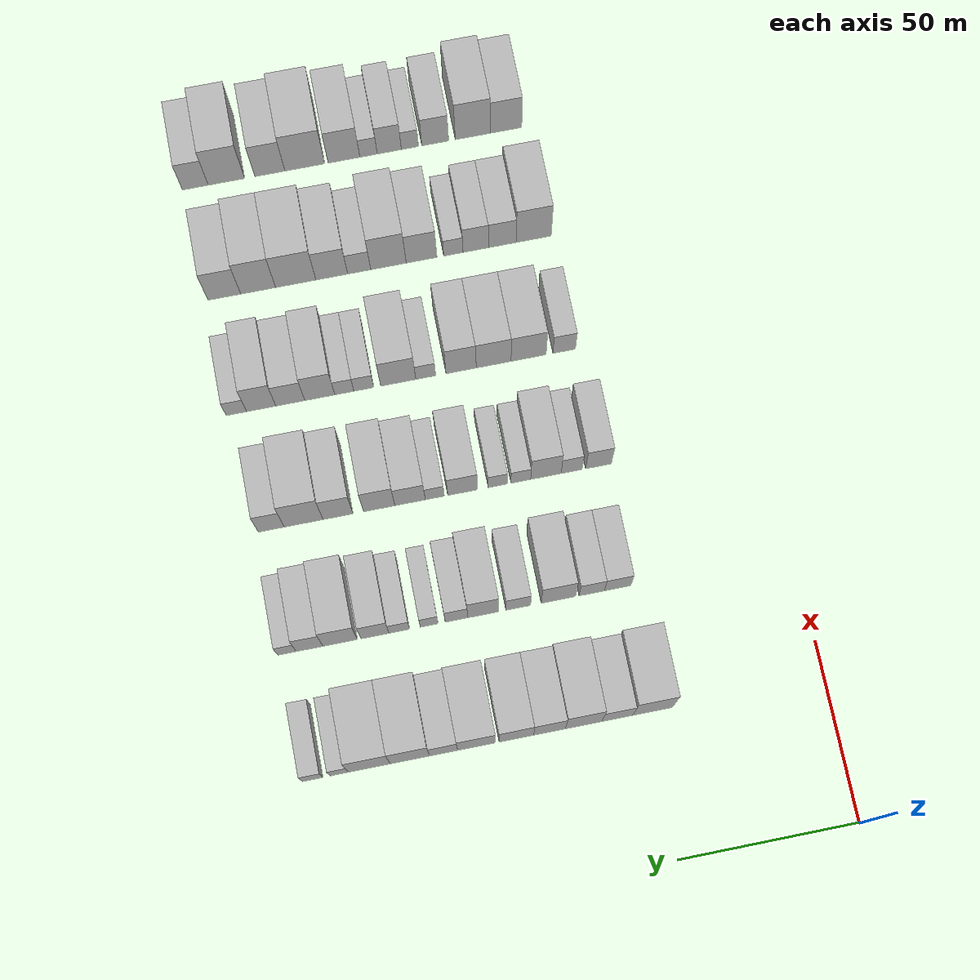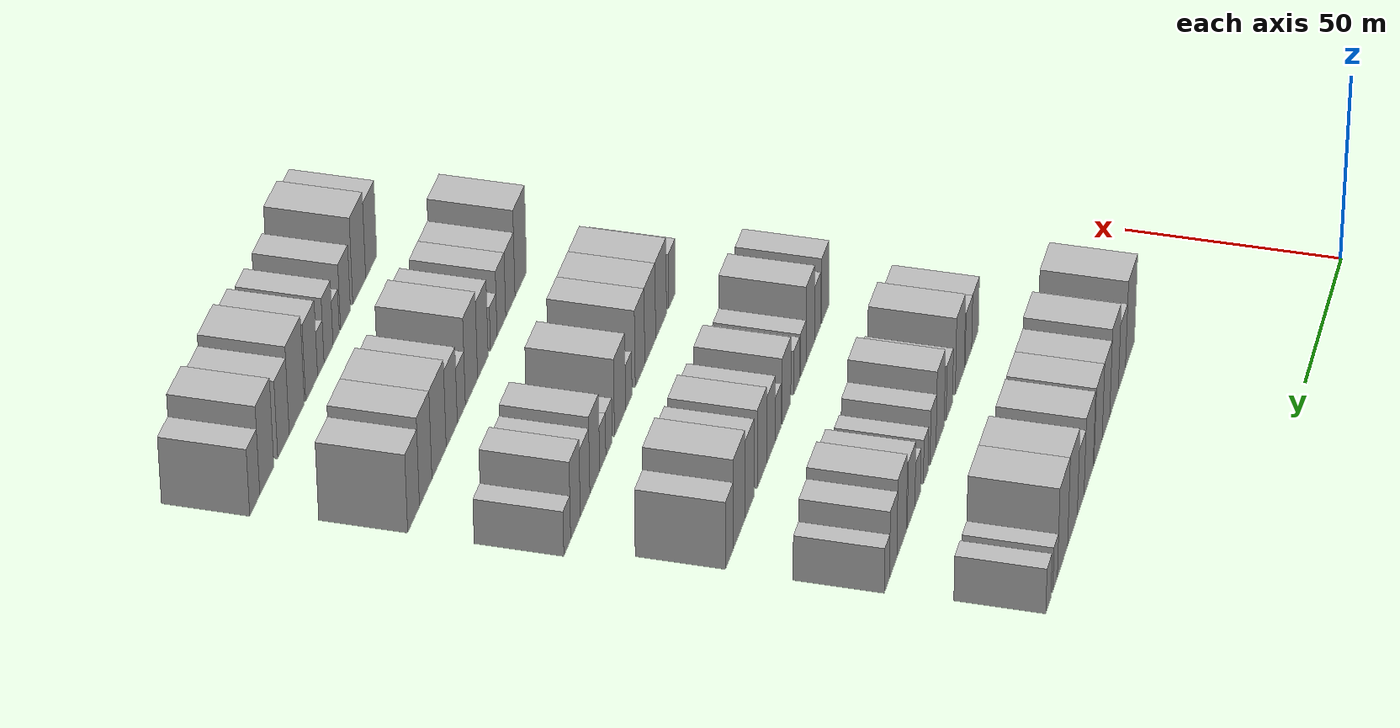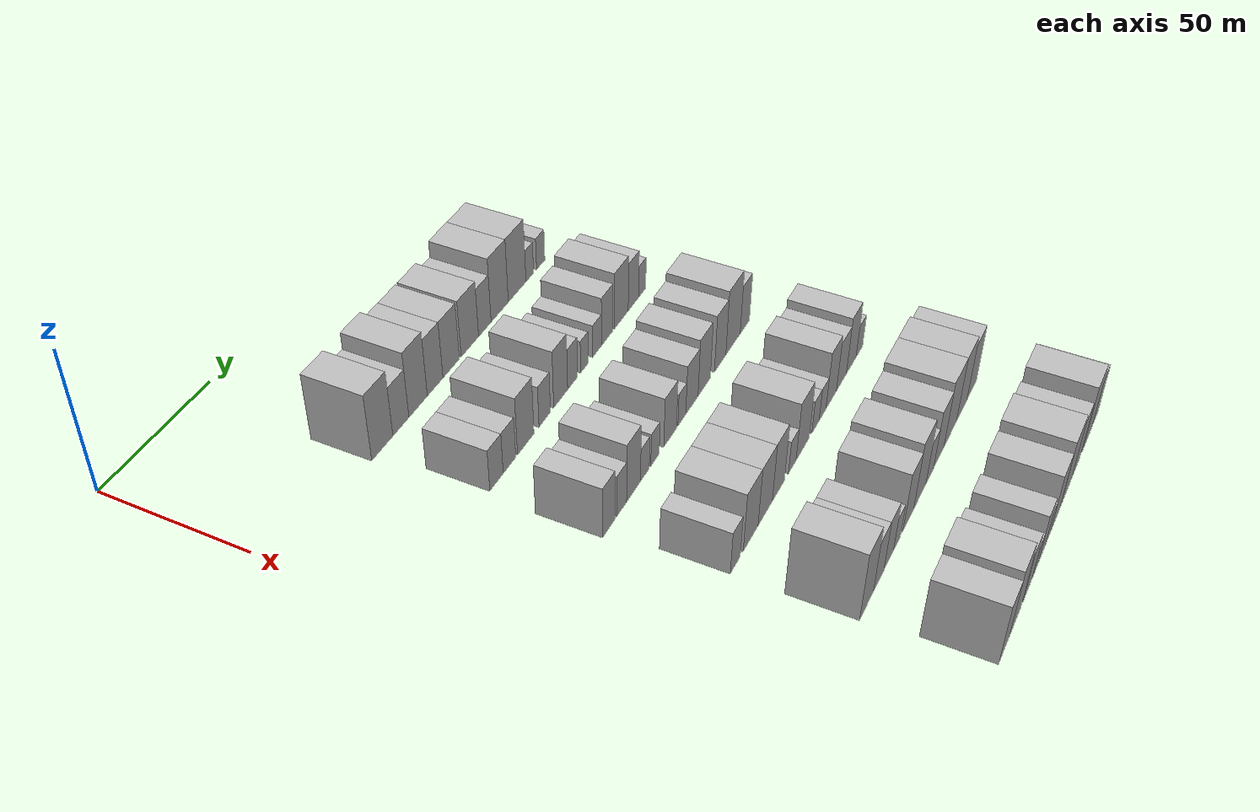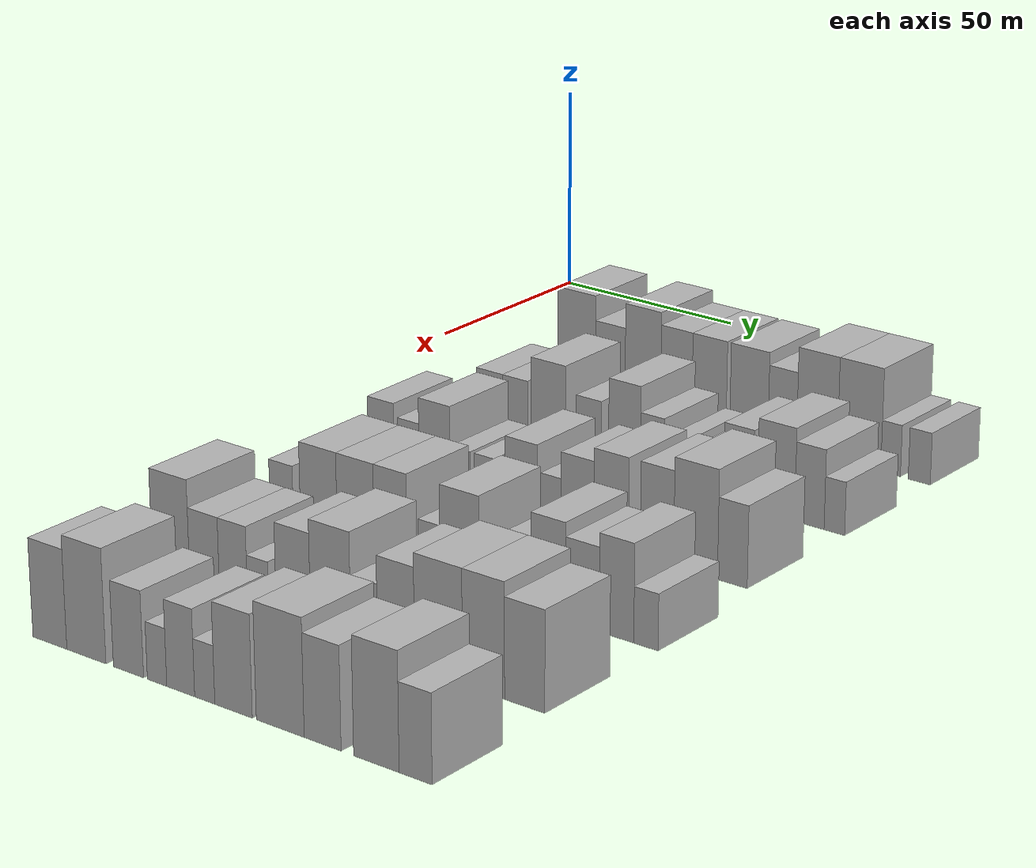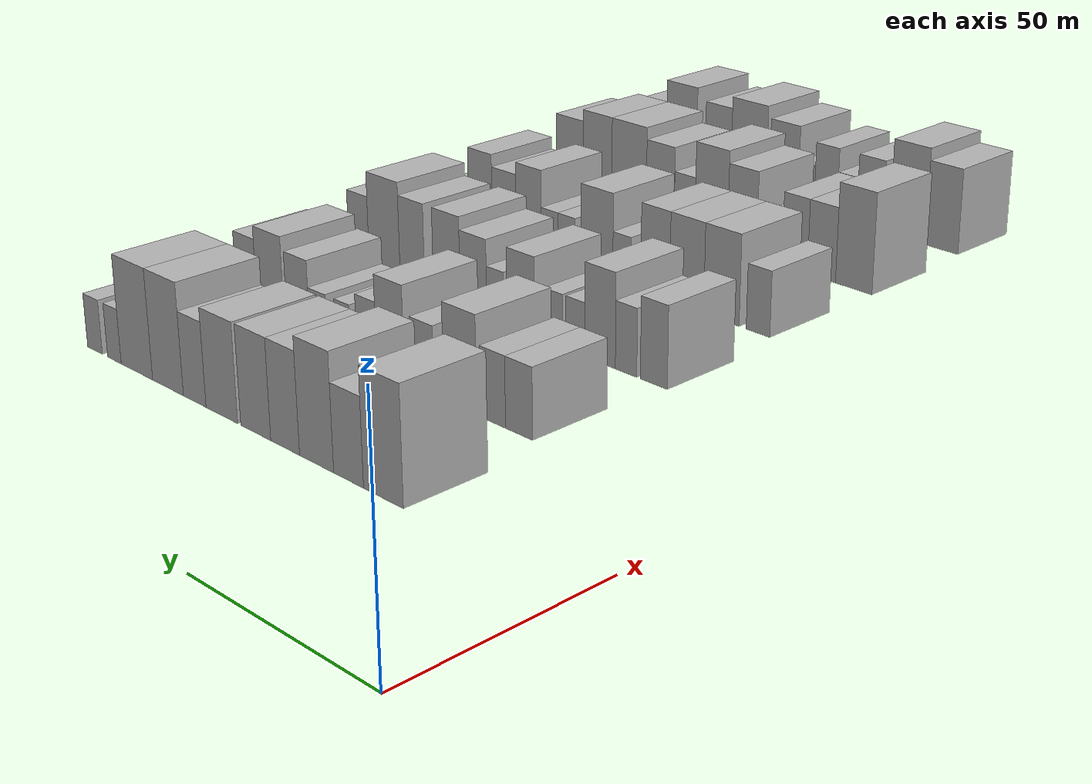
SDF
<sdf version="1.6">
 <world name="default">
  <model name="building_69">
   <static>1</static>
   <pose>50.0000 48.1922 0 0.000000 0.000000 0.000000</pose>
   <link name="link">
    <pose>0 0 12.00 0 0 0</pose>
    <collision name="collision"><geometry><box><size>20.0000 11.0312 24.0000</size></box></geometry></collision>
    <visual name="visual">
     <cast_shadows>0</cast_shadows>
     <geometry><box><size>20.0000 11.0312 24.0000</size></box></geometry>
     <material>
      <script>
       <uri>model://HANNAS_wall/materials/scripts</uri>
       <uri>model://HANNAS_wall/materials/textures</uri>
       <name>vrc/HANNAS_wall</name>
      </script>
     </material>
    </visual>
   </link>
  </model>
  <model name="building_70">
   <static>1</static>
   <pose>50.0000 57.9912 0 0.000000 0.000000 0.000000</pose>
   <link name="link">
    <pose>0 0 9.00 0 0 0</pose>
    <collision name="collision"><geometry><box><size>20.0000 8.5667 18.0000</size></box></geometry></collision>
    <visual name="visual">
     <cast_shadows>0</cast_shadows>
     <geometry><box><size>20.0000 8.5667 18.0000</size></box></geometry>
     <material>
      <script>
       <uri>model://HANNAS_wall/materials/scripts</uri>
       <uri>model://HANNAS_wall/materials/textures</uri>
       <name>vrc/HANNAS_wall</name>
      </script>
     </material>
    </visual>
   </link>
  </model>
  <model name="building_71">
   <static>1</static>
   <pose>50.0000 67.3461 0 0.000000 0.000000 0.000000</pose>
   <link name="link">
    <pose>0 0 12.00 0 0 0</pose>
    <collision name="collision"><geometry><box><size>20.0000 10.1432 24.0000</size></box></geometry></collision>
    <visual name="visual">
     <cast_shadows>0</cast_shadows>
     <geometry><box><size>20.0000 10.1432 24.0000</size></box></geometry>
     <material>
      <script>
       <uri>model://HANNAS_wall/materials/scripts</uri>
       <uri>model://HANNAS_wall/materials/textures</uri>
       <name>vrc/HANNAS_wall</name>
      </script>
     </material>
    </visual>
   </link>
  </model>
  <model name="building_72">
   <static>1</static>
   <pose>50.0000 76.8312 0 0.000000 0.000000 0.000000</pose>
   <link name="link">
    <pose>0 0 10.50 0 0 0</pose>
    <collision name="collision"><geometry><box><size>20.0000 8.8269 21.0000</size></box></geometry></collision>
    <visual name="visual">
     <cast_shadows>0</cast_shadows>
     <geometry><box><size>20.0000 8.8269 21.0000</size></box></geometry>
     <material>
      <script>
       <uri>model://HANNAS_wall/materials/scripts</uri>
       <uri>model://HANNAS_wall/materials/textures</uri>
       <name>vrc/HANNAS_wall</name>
      </script>
     </material>
    </visual>
   </link>
  </model>
  <model name="building_73">
   <static>1</static>
   <pose>50.0000 86.0131 0 0.000000 0.000000 0.000000</pose>
   <link name="link">
    <pose>0 0 10.50 0 0 0</pose>
    <collision name="collision"><geometry><box><size>20.0000 9.5368 21.0000</size></box></geometry></collision>
    <visual name="visual">
     <cast_shadows>0</cast_shadows>
     <geometry><box><size>20.0000 9.5368 21.0000</size></box></geometry>
     <material>
      <script>
       <uri>model://HANNAS_wall/materials/scripts</uri>
       <uri>model://HANNAS_wall/materials/textures</uri>
       <name>vrc/HANNAS_wall</name>
      </script>
     </material>
    </visual>
   </link>
  </model>
  <model name="building_74">
   <static>1</static>
   <pose>50.0000 96.9969 0 0.000000 0.000000 0.000000</pose>
   <link name="link">
    <pose>0 0 10.50 0 0 0</pose>
    <collision name="collision"><geometry><box><size>20.0000 10.4309 21.0000</size></box></geometry></collision>
    <visual name="visual">
     <cast_shadows>0</cast_shadows>
     <geometry><box><size>20.0000 10.4309 21.0000</size></box></geometry>
     <material>
      <script>
       <uri>model://HANNAS_wall/materials/scripts</uri>
       <uri>model://HANNAS_wall/materials/textures</uri>
       <name>vrc/HANNAS_wall</name>
      </script>
     </material>
    </visual>
   </link>
  </model>
  <model name="building_75">
   <static>1</static>
   <pose>50.0000 106.0563 0 0.000000 0.000000 0.000000</pose>
   <link name="link">
    <pose>0 0 9.00 0 0 0</pose>
    <collision name="collision"><geometry><box><size>20.0000 7.6878 18.0000</size></box></geometry></collision>
    <visual name="visual">
     <cast_shadows>0</cast_shadows>
     <geometry><box><size>20.0000 7.6878 18.0000</size></box></geometry>
     <material>
      <script>
       <uri>model://HANNAS_wall/materials/scripts</uri>
       <uri>model://HANNAS_wall/materials/textures</uri>
       <name>vrc/HANNAS_wall</name>
      </script>
     </material>
    </visual>
   </link>
  </model>
  <model name="building_76">
   <static>1</static>
   <pose>50.0000 115.3073 0 0.000000 0.000000 0.000000</pose>
   <link name="link">
    <pose>0 0 12.00 0 0 0</pose>
    <collision name="collision"><geometry><box><size>20.0000 10.8142 24.0000</size></box></geometry></collision>
    <visual name="visual">
     <cast_shadows>0</cast_shadows>
     <geometry><box><size>20.0000 10.8142 24.0000</size></box></geometry>
     <material>
      <script>
       <uri>model://HANNAS_wall/materials/scripts</uri>
       <uri>model://HANNAS_wall/materials/textures</uri>
       <name>vrc/HANNAS_wall</name>
      </script>
     </material>
    </visual>
   </link>
  </model>
  <model name="building_77">
   <static>1</static>
   <pose>50.0000 126.4252 0 0.000000 0.000000 0.000000</pose>
   <link name="link">
    <pose>0 0 12.00 0 0 0</pose>
    <collision name="collision"><geometry><box><size>20.0000 11.4216 24.0000</size></box></geometry></collision>
    <visual name="visual">
     <cast_shadows>0</cast_shadows>
     <geometry><box><size>20.0000 11.4216 24.0000</size></box></geometry>
     <material>
      <script>
       <uri>model://HANNAS_wall/materials/scripts</uri>
       <uri>model://HANNAS_wall/materials/textures</uri>
       <name>vrc/HANNAS_wall</name>
      </script>
     </material>
    </visual>
   </link>
  </model>
  <model name="building_78">
   <static>1</static>
   <pose>50.0000 134.6689 0 0.000000 0.000000 0.000000</pose>
   <link name="link">
    <pose>0 0 6.00 0 0 0</pose>
    <collision name="collision"><geometry><box><size>20.0000 5.0657 12.0000</size></box></geometry></collision>
    <visual name="visual">
     <cast_shadows>0</cast_shadows>
     <geometry><box><size>20.0000 5.0657 12.0000</size></box></geometry>
     <material>
      <script>
       <uri>model://HANNAS_wall/materials/scripts</uri>
       <uri>model://HANNAS_wall/materials/textures</uri>
       <name>vrc/HANNAS_wall</name>
      </script>
     </material>
    </visual>
   </link>
  </model>
  <model name="building_79">
   <static>1</static>
   <pose>50.0000 142.0013 0 0.000000 0.000000 0.000000</pose>
   <link name="link">
    <pose>0 0 6.00 0 0 0</pose>
    <collision name="collision"><geometry><box><size>20.0000 5.5991 12.0000</size></box></geometry></collision>
    <visual name="visual">
     <cast_shadows>0</cast_shadows>
     <geometry><box><size>20.0000 5.5991 12.0000</size></box></geometry>
     <material>
      <script>
       <uri>model://HANNAS_wall/materials/scripts</uri>
       <uri>model://HANNAS_wall/materials/textures</uri>
       <name>vrc/HANNAS_wall</name>
      </script>
     </material>
    </visual>
   </link>
  </model>
  <model name="building_195">
   <static>1</static>
   <pose>85.0000 50.4313 0 0.000000 0.000000 0.000000</pose>
   <link name="link">
    <pose>0 0 7.50 0 0 0</pose>
    <collision name="collision"><geometry><box><size>20.0000 7.4759 15.0000</size></box></geometry></collision>
    <visual name="visual">
     <cast_shadows>0</cast_shadows>
     <geometry><box><size>20.0000 7.4759 15.0000</size></box></geometry>
     <material>
      <script>
       <uri>model://HANNAS_wall/materials/scripts</uri>
       <uri>model://HANNAS_wall/materials/textures</uri>
       <name>vrc/HANNAS_wall</name>
      </script>
     </material>
    </visual>
   </link>
  </model>
  <model name="building_196">
   <static>1</static>
   <pose>85.0000 57.7407 0 0.000000 0.000000 0.000000</pose>
   <link name="link">
    <pose>0 0 7.50 0 0 0</pose>
    <collision name="collision"><geometry><box><size>20.0000 7.1428 15.0000</size></box></geometry></collision>
    <visual name="visual">
     <cast_shadows>0</cast_shadows>
     <geometry><box><size>20.0000 7.1428 15.0000</size></box></geometry>
     <material>
      <script>
       <uri>model://HANNAS_wall/materials/scripts</uri>
       <uri>model://HANNAS_wall/materials/textures</uri>
       <name>vrc/HANNAS_wall</name>
      </script>
     </material>
    </visual>
   </link>
  </model>
  <model name="building_197">
   <static>1</static>
   <pose>85.0000 67.1422 0 0.000000 0.000000 0.000000</pose>
   <link name="link">
    <pose>0 0 10.50 0 0 0</pose>
    <collision name="collision"><geometry><box><size>20.0000 9.6603 21.0000</size></box></geometry></collision>
    <visual name="visual">
     <cast_shadows>0</cast_shadows>
     <geometry><box><size>20.0000 9.6603 21.0000</size></box></geometry>
     <material>
      <script>
       <uri>model://HANNAS_wall/materials/scripts</uri>
       <uri>model://HANNAS_wall/materials/textures</uri>
       <name>vrc/HANNAS_wall</name>
      </script>
     </material>
    </visual>
   </link>
  </model>
  <model name="building_198">
   <static>1</static>
   <pose>85.0000 78.4407 0 0.000000 0.000000 0.000000</pose>
   <link name="link">
    <pose>0 0 7.50 0 0 0</pose>
    <collision name="collision"><geometry><box><size>20.0000 6.9366 15.0000</size></box></geometry></collision>
    <visual name="visual">
     <cast_shadows>0</cast_shadows>
     <geometry><box><size>20.0000 6.9366 15.0000</size></box></geometry>
     <material>
      <script>
       <uri>model://HANNAS_wall/materials/scripts</uri>
       <uri>model://HANNAS_wall/materials/textures</uri>
       <name>vrc/HANNAS_wall</name>
      </script>
     </material>
    </visual>
   </link>
  </model>
  <model name="building_199">
   <static>1</static>
   <pose>85.0000 88.2603 0 0.000000 0.000000 0.000000</pose>
   <link name="link">
    <pose>0 0 10.50 0 0 0</pose>
    <collision name="collision"><geometry><box><size>20.0000 8.7026 21.0000</size></box></geometry></collision>
    <visual name="visual">
     <cast_shadows>0</cast_shadows>
     <geometry><box><size>20.0000 8.7026 21.0000</size></box></geometry>
     <material>
      <script>
       <uri>model://HANNAS_wall/materials/scripts</uri>
       <uri>model://HANNAS_wall/materials/textures</uri>
       <name>vrc/HANNAS_wall</name>
      </script>
     </material>
    </visual>
   </link>
  </model>
  <model name="building_200">
   <static>1</static>
   <pose>85.0000 95.7682 0 0.000000 0.000000 0.000000</pose>
   <link name="link">
    <pose>0 0 7.50 0 0 0</pose>
    <collision name="collision"><geometry><box><size>20.0000 6.3133 15.0000</size></box></geometry></collision>
    <visual name="visual">
     <cast_shadows>0</cast_shadows>
     <geometry><box><size>20.0000 6.3133 15.0000</size></box></geometry>
     <material>
      <script>
       <uri>model://HANNAS_wall/materials/scripts</uri>
       <uri>model://HANNAS_wall/materials/textures</uri>
       <name>vrc/HANNAS_wall</name>
      </script>
     </material>
    </visual>
   </link>
  </model>
  <model name="building_201">
   <static>1</static>
   <pose>85.0000 103.4107 0 0.000000 0.000000 0.000000</pose>
   <link name="link">
    <pose>0 0 6.00 0 0 0</pose>
    <collision name="collision"><geometry><box><size>20.0000 4.9717 12.0000</size></box></geometry></collision>
    <visual name="visual">
     <cast_shadows>0</cast_shadows>
     <geometry><box><size>20.0000 4.9717 12.0000</size></box></geometry>
     <material>
      <script>
       <uri>model://HANNAS_wall/materials/scripts</uri>
       <uri>model://HANNAS_wall/materials/textures</uri>
       <name>vrc/HANNAS_wall</name>
      </script>
     </material>
    </visual>
   </link>
  </model>
  <model name="building_202">
   <static>1</static>
   <pose>85.0000 111.7844 0 0.000000 0.000000 0.000000</pose>
   <link name="link">
    <pose>0 0 6.00 0 0 0</pose>
    <collision name="collision"><geometry><box><size>20.0000 5.7756 12.0000</size></box></geometry></collision>
    <visual name="visual">
     <cast_shadows>0</cast_shadows>
     <geometry><box><size>20.0000 5.7756 12.0000</size></box></geometry>
     <material>
      <script>
       <uri>model://HANNAS_wall/materials/scripts</uri>
       <uri>model://HANNAS_wall/materials/textures</uri>
       <name>vrc/HANNAS_wall</name>
      </script>
     </material>
    </visual>
   </link>
  </model>
  <model name="building_203">
   <static>1</static>
   <pose>85.0000 118.5792 0 0.000000 0.000000 0.000000</pose>
   <link name="link">
    <pose>0 0 9.00 0 0 0</pose>
    <collision name="collision"><geometry><box><size>20.0000 7.8141 18.0000</size></box></geometry></collision>
    <visual name="visual">
     <cast_shadows>0</cast_shadows>
     <geometry><box><size>20.0000 7.8141 18.0000</size></box></geometry>
     <material>
      <script>
       <uri>model://HANNAS_wall/materials/scripts</uri>
       <uri>model://HANNAS_wall/materials/textures</uri>
       <name>vrc/HANNAS_wall</name>
      </script>
     </material>
    </visual>
   </link>
  </model>
  <model name="building_204">
   <static>1</static>
   <pose>85.0000 128.2782 0 0.000000 0.000000 0.000000</pose>
   <link name="link">
    <pose>0 0 10.50 0 0 0</pose>
    <collision name="collision"><geometry><box><size>20.0000 9.5839 21.0000</size></box></geometry></collision>
    <visual name="visual">
     <cast_shadows>0</cast_shadows>
     <geometry><box><size>20.0000 9.5839 21.0000</size></box></geometry>
     <material>
      <script>
       <uri>model://HANNAS_wall/materials/scripts</uri>
       <uri>model://HANNAS_wall/materials/textures</uri>
       <name>vrc/HANNAS_wall</name>
      </script>
     </material>
    </visual>
   </link>
  </model>
  <model name="building_205">
   <static>1</static>
   <pose>85.0000 136.7982 0 0.000000 0.000000 0.000000</pose>
   <link name="link">
    <pose>0 0 9.00 0 0 0</pose>
    <collision name="collision"><geometry><box><size>20.0000 7.4561 18.0000</size></box></geometry></collision>
    <visual name="visual">
     <cast_shadows>0</cast_shadows>
     <geometry><box><size>20.0000 7.4561 18.0000</size></box></geometry>
     <material>
      <script>
       <uri>model://HANNAS_wall/materials/scripts</uri>
       <uri>model://HANNAS_wall/materials/textures</uri>
       <name>vrc/HANNAS_wall</name>
      </script>
     </material>
    </visual>
   </link>
  </model>
  <model name="building_206">
   <static>1</static>
   <pose>85.0000 143.0936 0 0.000000 0.000000 0.000000</pose>
   <link name="link">
    <pose>0 0 6.00 0 0 0</pose>
    <collision name="collision"><geometry><box><size>20.0000 5.1347 12.0000</size></box></geometry></collision>
    <visual name="visual">
     <cast_shadows>0</cast_shadows>
     <geometry><box><size>20.0000 5.1347 12.0000</size></box></geometry>
     <material>
      <script>
       <uri>model://HANNAS_wall/materials/scripts</uri>
       <uri>model://HANNAS_wall/materials/textures</uri>
       <name>vrc/HANNAS_wall</name>
      </script>
     </material>
    </visual>
   </link>
  </model>
  <model name="building_328">
   <static>1</static>
   <pose>120.0000 48.4044 0 0.000000 0.000000 0.000000</pose>
   <link name="link">
    <pose>0 0 9.00 0 0 0</pose>
    <collision name="collision"><geometry><box><size>20.0000 7.3899 18.0000</size></box></geometry></collision>
    <visual name="visual">
     <cast_shadows>0</cast_shadows>
     <geometry><box><size>20.0000 7.3899 18.0000</size></box></geometry>
     <material>
      <script>
       <uri>model://HANNAS_wall/materials/scripts</uri>
       <uri>model://HANNAS_wall/materials/textures</uri>
       <name>vrc/HANNAS_wall</name>
      </script>
     </material>
    </visual>
   </link>
  </model>
  <model name="building_329">
   <static>1</static>
   <pose>120.0000 56.1158 0 0.000000 0.000000 0.000000</pose>
   <link name="link">
    <pose>0 0 7.50 0 0 0</pose>
    <collision name="collision"><geometry><box><size>20.0000 6.0329 15.0000</size></box></geometry></collision>
    <visual name="visual">
     <cast_shadows>0</cast_shadows>
     <geometry><box><size>20.0000 6.0329 15.0000</size></box></geometry>
     <material>
      <script>
       <uri>model://HANNAS_wall/materials/scripts</uri>
       <uri>model://HANNAS_wall/materials/textures</uri>
       <name>vrc/HANNAS_wall</name>
      </script>
     </material>
    </visual>
   </link>
  </model>
  <model name="building_330">
   <static>1</static>
   <pose>120.0000 63.4869 0 0.000000 0.000000 0.000000</pose>
   <link name="link">
    <pose>0 0 10.50 0 0 0</pose>
    <collision name="collision"><geometry><box><size>20.0000 8.7095 21.0000</size></box></geometry></collision>
    <visual name="visual">
     <cast_shadows>0</cast_shadows>
     <geometry><box><size>20.0000 8.7095 21.0000</size></box></geometry>
     <material>
      <script>
       <uri>model://HANNAS_wall/materials/scripts</uri>
       <uri>model://HANNAS_wall/materials/textures</uri>
       <name>vrc/HANNAS_wall</name>
      </script>
     </material>
    </visual>
   </link>
  </model>
  <model name="building_331">
   <static>1</static>
   <pose>120.0000 70.6567 0 0.000000 0.000000 0.000000</pose>
   <link name="link">
    <pose>0 0 6.00 0 0 0</pose>
    <collision name="collision"><geometry><box><size>20.0000 5.6301 12.0000</size></box></geometry></collision>
    <visual name="visual">
     <cast_shadows>0</cast_shadows>
     <geometry><box><size>20.0000 5.6301 12.0000</size></box></geometry>
     <material>
      <script>
       <uri>model://HANNAS_wall/materials/scripts</uri>
       <uri>model://HANNAS_wall/materials/textures</uri>
       <name>vrc/HANNAS_wall</name>
      </script>
     </material>
    </visual>
   </link>
  </model>
  <model name="building_332">
   <static>1</static>
   <pose>120.0000 77.2318 0 0.000000 0.000000 0.000000</pose>
   <link name="link">
    <pose>0 0 6.00 0 0 0</pose>
    <collision name="collision"><geometry><box><size>20.0000 5.5201 12.0000</size></box></geometry></collision>
    <visual name="visual">
     <cast_shadows>0</cast_shadows>
     <geometry><box><size>20.0000 5.5201 12.0000</size></box></geometry>
     <material>
      <script>
       <uri>model://HANNAS_wall/materials/scripts</uri>
       <uri>model://HANNAS_wall/materials/textures</uri>
       <name>vrc/HANNAS_wall</name>
      </script>
     </material>
    </visual>
   </link>
  </model>
  <model name="building_333">
   <static>1</static>
   <pose>120.0000 87.2501 0 0.000000 0.000000 0.000000</pose>
   <link name="link">
    <pose>0 0 9.00 0 0 0</pose>
    <collision name="collision"><geometry><box><size>20.0000 8.5165 18.0000</size></box></geometry></collision>
    <visual name="visual">
     <cast_shadows>0</cast_shadows>
     <geometry><box><size>20.0000 8.5165 18.0000</size></box></geometry>
     <material>
      <script>
       <uri>model://HANNAS_wall/materials/scripts</uri>
       <uri>model://HANNAS_wall/materials/textures</uri>
       <name>vrc/HANNAS_wall</name>
      </script>
     </material>
    </visual>
   </link>
  </model>
  <model name="building_334">
   <static>1</static>
   <pose>120.0000 95.2162 0 0.000000 0.000000 0.000000</pose>
   <link name="link">
    <pose>0 0 6.00 0 0 0</pose>
    <collision name="collision"><geometry><box><size>20.0000 5.4156 12.0000</size></box></geometry></collision>
    <visual name="visual">
     <cast_shadows>0</cast_shadows>
     <geometry><box><size>20.0000 5.4156 12.0000</size></box></geometry>
     <material>
      <script>
       <uri>model://HANNAS_wall/materials/scripts</uri>
       <uri>model://HANNAS_wall/materials/textures</uri>
       <name>vrc/HANNAS_wall</name>
      </script>
     </material>
    </visual>
   </link>
  </model>
  <model name="building_335">
   <static>1</static>
   <pose>120.0000 102.2393 0 0.000000 0.000000 0.000000</pose>
   <link name="link">
    <pose>0 0 9.00 0 0 0</pose>
    <collision name="collision"><geometry><box><size>20.0000 8.6307 18.0000</size></box></geometry></collision>
    <visual name="visual">
     <cast_shadows>0</cast_shadows>
     <geometry><box><size>20.0000 8.6307 18.0000</size></box></geometry>
     <material>
      <script>
       <uri>model://HANNAS_wall/materials/scripts</uri>
       <uri>model://HANNAS_wall/materials/textures</uri>
       <name>vrc/HANNAS_wall</name>
      </script>
     </material>
    </visual>
   </link>
  </model>
  <model name="building_336">
   <static>1</static>
   <pose>120.0000 111.0092 0 0.000000 0.000000 0.000000</pose>
   <link name="link">
    <pose>0 0 10.50 0 0 0</pose>
    <collision name="collision"><geometry><box><size>20.0000 8.9091 21.0000</size></box></geometry></collision>
    <visual name="visual">
     <cast_shadows>0</cast_shadows>
     <geometry><box><size>20.0000 8.9091 21.0000</size></box></geometry>
     <material>
      <script>
       <uri>model://HANNAS_wall/materials/scripts</uri>
       <uri>model://HANNAS_wall/materials/textures</uri>
       <name>vrc/HANNAS_wall</name>
      </script>
     </material>
    </visual>
   </link>
  </model>
  <model name="building_337">
   <static>1</static>
   <pose>120.0000 122.7157 0 0.000000 0.000000 0.000000</pose>
   <link name="link">
    <pose>0 0 10.50 0 0 0</pose>
    <collision name="collision"><geometry><box><size>20.0000 8.5039 21.0000</size></box></geometry></collision>
    <visual name="visual">
     <cast_shadows>0</cast_shadows>
     <geometry><box><size>20.0000 8.5039 21.0000</size></box></geometry>
     <material>
      <script>
       <uri>model://HANNAS_wall/materials/scripts</uri>
       <uri>model://HANNAS_wall/materials/textures</uri>
       <name>vrc/HANNAS_wall</name>
      </script>
     </material>
    </visual>
   </link>
  </model>
  <model name="building_338">
   <static>1</static>
   <pose>120.0000 132.4516 0 0.000000 0.000000 0.000000</pose>
   <link name="link">
    <pose>0 0 12.00 0 0 0</pose>
    <collision name="collision"><geometry><box><size>20.0000 10.9677 24.0000</size></box></geometry></collision>
    <visual name="visual">
     <cast_shadows>0</cast_shadows>
     <geometry><box><size>20.0000 10.9677 24.0000</size></box></geometry>
     <material>
      <script>
       <uri>model://HANNAS_wall/materials/scripts</uri>
       <uri>model://HANNAS_wall/materials/textures</uri>
       <name>vrc/HANNAS_wall</name>
      </script>
     </material>
    </visual>
   </link>
  </model>
  <model name="building_339">
   <static>1</static>
   <pose>120.0000 141.5963 0 0.000000 0.000000 0.000000</pose>
   <link name="link">
    <pose>0 0 9.00 0 0 0</pose>
    <collision name="collision"><geometry><box><size>20.0000 7.3216 18.0000</size></box></geometry></collision>
    <visual name="visual">
     <cast_shadows>0</cast_shadows>
     <geometry><box><size>20.0000 7.3216 18.0000</size></box></geometry>
     <material>
      <script>
       <uri>model://HANNAS_wall/materials/scripts</uri>
       <uri>model://HANNAS_wall/materials/textures</uri>
       <name>vrc/HANNAS_wall</name>
      </script>
     </material>
    </visual>
   </link>
  </model>
  <model name="building_461">
   <static>1</static>
   <pose>155.0000 50.9807 0 0.000000 0.000000 0.000000</pose>
   <link name="link">
    <pose>0 0 7.50 0 0 0</pose>
    <collision name="collision"><geometry><box><size>20.0000 6.5676 15.0000</size></box></geometry></collision>
    <visual name="visual">
     <cast_shadows>0</cast_shadows>
     <geometry><box><size>20.0000 6.5676 15.0000</size></box></geometry>
     <material>
      <script>
       <uri>model://HANNAS_wall/materials/scripts</uri>
       <uri>model://HANNAS_wall/materials/textures</uri>
       <name>vrc/HANNAS_wall</name>
      </script>
     </material>
    </visual>
   </link>
  </model>
  <model name="building_462">
   <static>1</static>
   <pose>155.0000 61.3556 0 0.000000 0.000000 0.000000</pose>
   <link name="link">
    <pose>0 0 10.50 0 0 0</pose>
    <collision name="collision"><geometry><box><size>20.0000 10.1824 21.0000</size></box></geometry></collision>
    <visual name="visual">
     <cast_shadows>0</cast_shadows>
     <geometry><box><size>20.0000 10.1824 21.0000</size></box></geometry>
     <material>
      <script>
       <uri>model://HANNAS_wall/materials/scripts</uri>
       <uri>model://HANNAS_wall/materials/textures</uri>
       <name>vrc/HANNAS_wall</name>
      </script>
     </material>
    </visual>
   </link>
  </model>
  <model name="building_463">
   <static>1</static>
   <pose>155.0000 71.4983 0 0.000000 0.000000 0.000000</pose>
   <link name="link">
    <pose>0 0 10.50 0 0 0</pose>
    <collision name="collision"><geometry><box><size>20.0000 10.1029 21.0000</size></box></geometry></collision>
    <visual name="visual">
     <cast_shadows>0</cast_shadows>
     <geometry><box><size>20.0000 10.1029 21.0000</size></box></geometry>
     <material>
      <script>
       <uri>model://HANNAS_wall/materials/scripts</uri>
       <uri>model://HANNAS_wall/materials/textures</uri>
       <name>vrc/HANNAS_wall</name>
      </script>
     </material>
    </visual>
   </link>
  </model>
  <model name="building_464">
   <static>1</static>
   <pose>155.0000 80.9402 0 0.000000 0.000000 0.000000</pose>
   <link name="link">
    <pose>0 0 10.50 0 0 0</pose>
    <collision name="collision"><geometry><box><size>20.0000 8.7810 21.0000</size></box></geometry></collision>
    <visual name="visual">
     <cast_shadows>0</cast_shadows>
     <geometry><box><size>20.0000 8.7810 21.0000</size></box></geometry>
     <material>
      <script>
       <uri>model://HANNAS_wall/materials/scripts</uri>
       <uri>model://HANNAS_wall/materials/textures</uri>
       <name>vrc/HANNAS_wall</name>
      </script>
     </material>
    </visual>
   </link>
  </model>
  <model name="building_465">
   <static>1</static>
   <pose>155.0000 91.1995 0 0.000000 0.000000 0.000000</pose>
   <link name="link">
    <pose>0 0 6.00 0 0 0</pose>
    <collision name="collision"><geometry><box><size>20.0000 5.7376 12.0000</size></box></geometry></collision>
    <visual name="visual">
     <cast_shadows>0</cast_shadows>
     <geometry><box><size>20.0000 5.7376 12.0000</size></box></geometry>
     <material>
      <script>
       <uri>model://HANNAS_wall/materials/scripts</uri>
       <uri>model://HANNAS_wall/materials/textures</uri>
       <name>vrc/HANNAS_wall</name>
      </script>
     </material>
    </visual>
   </link>
  </model>
  <model name="building_466">
   <static>1</static>
   <pose>155.0000 99.1409 0 0.000000 0.000000 0.000000</pose>
   <link name="link">
    <pose>0 0 10.50 0 0 0</pose>
    <collision name="collision"><geometry><box><size>20.0000 10.1451 21.0000</size></box></geometry></collision>
    <visual name="visual">
     <cast_shadows>0</cast_shadows>
     <geometry><box><size>20.0000 10.1451 21.0000</size></box></geometry>
     <material>
      <script>
       <uri>model://HANNAS_wall/materials/scripts</uri>
       <uri>model://HANNAS_wall/materials/textures</uri>
       <name>vrc/HANNAS_wall</name>
      </script>
     </material>
    </visual>
   </link>
  </model>
  <model name="building_467">
   <static>1</static>
   <pose>155.0000 109.0885 0 0.000000 0.000000 0.000000</pose>
   <link name="link">
    <pose>0 0 6.00 0 0 0</pose>
    <collision name="collision"><geometry><box><size>20.0000 5.7503 12.0000</size></box></geometry></collision>
    <visual name="visual">
     <cast_shadows>0</cast_shadows>
     <geometry><box><size>20.0000 5.7503 12.0000</size></box></geometry>
     <material>
      <script>
       <uri>model://HANNAS_wall/materials/scripts</uri>
       <uri>model://HANNAS_wall/materials/textures</uri>
       <name>vrc/HANNAS_wall</name>
      </script>
     </material>
    </visual>
   </link>
  </model>
  <model name="building_468">
   <static>1</static>
   <pose>155.0000 114.7093 0 0.000000 0.000000 0.000000</pose>
   <link name="link">
    <pose>0 0 6.00 0 0 0</pose>
    <collision name="collision"><geometry><box><size>20.0000 5.4913 12.0000</size></box></geometry></collision>
    <visual name="visual">
     <cast_shadows>0</cast_shadows>
     <geometry><box><size>20.0000 5.4913 12.0000</size></box></geometry>
     <material>
      <script>
       <uri>model://HANNAS_wall/materials/scripts</uri>
       <uri>model://HANNAS_wall/materials/textures</uri>
       <name>vrc/HANNAS_wall</name>
      </script>
     </material>
    </visual>
   </link>
  </model>
  <model name="building_469">
   <static>1</static>
   <pose>155.0000 121.7862 0 0.000000 0.000000 0.000000</pose>
   <link name="link">
    <pose>0 0 10.50 0 0 0</pose>
    <collision name="collision"><geometry><box><size>20.0000 8.6625 21.0000</size></box></geometry></collision>
    <visual name="visual">
     <cast_shadows>0</cast_shadows>
     <geometry><box><size>20.0000 8.6625 21.0000</size></box></geometry>
     <material>
      <script>
       <uri>model://HANNAS_wall/materials/scripts</uri>
       <uri>model://HANNAS_wall/materials/textures</uri>
       <name>vrc/HANNAS_wall</name>
      </script>
     </material>
    </visual>
   </link>
  </model>
  <model name="building_470">
   <static>1</static>
   <pose>155.0000 130.2879 0 0.000000 0.000000 0.000000</pose>
   <link name="link">
    <pose>0 0 9.00 0 0 0</pose>
    <collision name="collision"><geometry><box><size>20.0000 8.3408 18.0000</size></box></geometry></collision>
    <visual name="visual">
     <cast_shadows>0</cast_shadows>
     <geometry><box><size>20.0000 8.3408 18.0000</size></box></geometry>
     <material>
      <script>
       <uri>model://HANNAS_wall/materials/scripts</uri>
       <uri>model://HANNAS_wall/materials/textures</uri>
       <name>vrc/HANNAS_wall</name>
      </script>
     </material>
    </visual>
   </link>
  </model>
  <model name="building_471">
   <static>1</static>
   <pose>155.0000 138.6591 0 0.000000 0.000000 0.000000</pose>
   <link name="link">
    <pose>0 0 10.50 0 0 0</pose>
    <collision name="collision"><geometry><box><size>20.0000 8.4017 21.0000</size></box></geometry></collision>
    <visual name="visual">
     <cast_shadows>0</cast_shadows>
     <geometry><box><size>20.0000 8.4017 21.0000</size></box></geometry>
     <material>
      <script>
       <uri>model://HANNAS_wall/materials/scripts</uri>
       <uri>model://HANNAS_wall/materials/textures</uri>
       <name>vrc/HANNAS_wall</name>
      </script>
     </material>
    </visual>
   </link>
  </model>
  <model name="building_472">
   <static>1</static>
   <pose>155.0000 145.7843 0 0.000000 0.000000 0.000000</pose>
   <link name="link">
    <pose>0 0 6.00 0 0 0</pose>
    <collision name="collision"><geometry><box><size>20.0000 5.8487 12.0000</size></box></geometry></collision>
    <visual name="visual">
     <cast_shadows>0</cast_shadows>
     <geometry><box><size>20.0000 5.8487 12.0000</size></box></geometry>
     <material>
      <script>
       <uri>model://HANNAS_wall/materials/scripts</uri>
       <uri>model://HANNAS_wall/materials/textures</uri>
       <name>vrc/HANNAS_wall</name>
      </script>
     </material>
    </visual>
   </link>
  </model>
  <model name="building_577">
   <static>1</static>
   <pose>190.0000 52.7328 0 0.000000 0.000000 0.000000</pose>
   <link name="link">
    <pose>0 0 12.00 0 0 0</pose>
    <collision name="collision"><geometry><box><size>20.0000 10.3182 24.0000</size></box></geometry></collision>
    <visual name="visual">
     <cast_shadows>0</cast_shadows>
     <geometry><box><size>20.0000 10.3182 24.0000</size></box></geometry>
     <material>
      <script>
       <uri>model://HANNAS_wall/materials/scripts</uri>
       <uri>model://HANNAS_wall/materials/textures</uri>
       <name>vrc/HANNAS_wall</name>
      </script>
     </material>
    </visual>
   </link>
  </model>
  <model name="building_578">
   <static>1</static>
   <pose>190.0000 61.9672 0 0.000000 0.000000 0.000000</pose>
   <link name="link">
    <pose>0 0 9.00 0 0 0</pose>
    <collision name="collision"><geometry><box><size>20.0000 8.1505 18.0000</size></box></geometry></collision>
    <visual name="visual">
     <cast_shadows>0</cast_shadows>
     <geometry><box><size>20.0000 8.1505 18.0000</size></box></geometry>
     <material>
      <script>
       <uri>model://HANNAS_wall/materials/scripts</uri>
       <uri>model://HANNAS_wall/materials/textures</uri>
       <name>vrc/HANNAS_wall</name>
      </script>
     </material>
    </visual>
   </link>
  </model>
  <model name="building_579">
   <static>1</static>
   <pose>190.0000 69.8287 0 0.000000 0.000000 0.000000</pose>
   <link name="link">
    <pose>0 0 9.00 0 0 0</pose>
    <collision name="collision"><geometry><box><size>20.0000 7.5726 18.0000</size></box></geometry></collision>
    <visual name="visual">
     <cast_shadows>0</cast_shadows>
     <geometry><box><size>20.0000 7.5726 18.0000</size></box></geometry>
     <material>
      <script>
       <uri>model://HANNAS_wall/materials/scripts</uri>
       <uri>model://HANNAS_wall/materials/textures</uri>
       <name>vrc/HANNAS_wall</name>
      </script>
     </material>
    </visual>
   </link>
  </model>
  <model name="building_580">
   <static>1</static>
   <pose>190.0000 76.4650 0 0.000000 0.000000 0.000000</pose>
   <link name="link">
    <pose>0 0 6.00 0 0 0</pose>
    <collision name="collision"><geometry><box><size>20.0000 5.6999 12.0000</size></box></geometry></collision>
    <visual name="visual">
     <cast_shadows>0</cast_shadows>
     <geometry><box><size>20.0000 5.6999 12.0000</size></box></geometry>
     <material>
      <script>
       <uri>model://HANNAS_wall/materials/scripts</uri>
       <uri>model://HANNAS_wall/materials/textures</uri>
       <name>vrc/HANNAS_wall</name>
      </script>
     </material>
    </visual>
   </link>
  </model>
  <model name="building_581">
   <static>1</static>
   <pose>190.0000 85.8362 0 0.000000 0.000000 0.000000</pose>
   <link name="link">
    <pose>0 0 10.50 0 0 0</pose>
    <collision name="collision"><geometry><box><size>20.0000 9.0426 21.0000</size></box></geometry></collision>
    <visual name="visual">
     <cast_shadows>0</cast_shadows>
     <geometry><box><size>20.0000 9.0426 21.0000</size></box></geometry>
     <material>
      <script>
       <uri>model://HANNAS_wall/materials/scripts</uri>
       <uri>model://HANNAS_wall/materials/textures</uri>
       <name>vrc/HANNAS_wall</name>
      </script>
     </material>
    </visual>
   </link>
  </model>
  <model name="building_582">
   <static>1</static>
   <pose>190.0000 95.5650 0 0.000000 0.000000 0.000000</pose>
   <link name="link">
    <pose>0 0 12.00 0 0 0</pose>
    <collision name="collision"><geometry><box><size>20.0000 10.4150 24.0000</size></box></geometry></collision>
    <visual name="visual">
     <cast_shadows>0</cast_shadows>
     <geometry><box><size>20.0000 10.4150 24.0000</size></box></geometry>
     <material>
      <script>
       <uri>model://HANNAS_wall/materials/scripts</uri>
       <uri>model://HANNAS_wall/materials/textures</uri>
       <name>vrc/HANNAS_wall</name>
      </script>
     </material>
    </visual>
   </link>
  </model>
  <model name="building_583">
   <static>1</static>
   <pose>190.0000 104.1616 0 0.000000 0.000000 0.000000</pose>
   <link name="link">
    <pose>0 0 7.50 0 0 0</pose>
    <collision name="collision"><geometry><box><size>20.0000 6.7781 15.0000</size></box></geometry></collision>
    <visual name="visual">
     <cast_shadows>0</cast_shadows>
     <geometry><box><size>20.0000 6.7781 15.0000</size></box></geometry>
     <material>
      <script>
       <uri>model://HANNAS_wall/materials/scripts</uri>
       <uri>model://HANNAS_wall/materials/textures</uri>
       <name>vrc/HANNAS_wall</name>
      </script>
     </material>
    </visual>
   </link>
  </model>
  <model name="building_584">
   <static>1</static>
   <pose>190.0000 112.1997 0 0.000000 0.000000 0.000000</pose>
   <link name="link">
    <pose>0 0 10.50 0 0 0</pose>
    <collision name="collision"><geometry><box><size>20.0000 9.2981 21.0000</size></box></geometry></collision>
    <visual name="visual">
     <cast_shadows>0</cast_shadows>
     <geometry><box><size>20.0000 9.2981 21.0000</size></box></geometry>
     <material>
      <script>
       <uri>model://HANNAS_wall/materials/scripts</uri>
       <uri>model://HANNAS_wall/materials/textures</uri>
       <name>vrc/HANNAS_wall</name>
      </script>
     </material>
    </visual>
   </link>
  </model>
  <model name="building_585">
   <static>1</static>
   <pose>190.0000 122.7471 0 0.000000 0.000000 0.000000</pose>
   <link name="link">
    <pose>0 0 12.00 0 0 0</pose>
    <collision name="collision"><geometry><box><size>20.0000 11.7967 24.0000</size></box></geometry></collision>
    <visual name="visual">
     <cast_shadows>0</cast_shadows>
     <geometry><box><size>20.0000 11.7967 24.0000</size></box></geometry>
     <material>
      <script>
       <uri>model://HANNAS_wall/materials/scripts</uri>
       <uri>model://HANNAS_wall/materials/textures</uri>
       <name>vrc/HANNAS_wall</name>
      </script>
     </material>
    </visual>
   </link>
  </model>
  <model name="building_586">
   <static>1</static>
   <pose>190.0000 133.7292 0 0.000000 0.000000 0.000000</pose>
   <link name="link">
    <pose>0 0 12.00 0 0 0</pose>
    <collision name="collision"><geometry><box><size>20.0000 10.1674 24.0000</size></box></geometry></collision>
    <visual name="visual">
     <cast_shadows>0</cast_shadows>
     <geometry><box><size>20.0000 10.1674 24.0000</size></box></geometry>
     <material>
      <script>
       <uri>model://HANNAS_wall/materials/scripts</uri>
       <uri>model://HANNAS_wall/materials/textures</uri>
       <name>vrc/HANNAS_wall</name>
      </script>
     </material>
    </visual>
   </link>
  </model>
  <model name="building_587">
   <static>1</static>
   <pose>190.0000 143.5848 0 0.000000 0.000000 0.000000</pose>
   <link name="link">
    <pose>0 0 10.50 0 0 0</pose>
    <collision name="collision"><geometry><box><size>20.0000 9.5438 21.0000</size></box></geometry></collision>
    <visual name="visual">
     <cast_shadows>0</cast_shadows>
     <geometry><box><size>20.0000 9.5438 21.0000</size></box></geometry>
     <material>
      <script>
       <uri>model://HANNAS_wall/materials/scripts</uri>
       <uri>model://HANNAS_wall/materials/textures</uri>
       <name>vrc/HANNAS_wall</name>
      </script>
     </material>
    </visual>
   </link>
  </model>
  <model name="building_702">
   <static>1</static>
   <pose>225.0000 53.8945 0 0.000000 0.000000 0.000000</pose>
   <link name="link">
    <pose>0 0 10.50 0 0 0</pose>
    <collision name="collision"><geometry><box><size>20.0000 9.3263 21.0000</size></box></geometry></collision>
    <visual name="visual">
     <cast_shadows>0</cast_shadows>
     <geometry><box><size>20.0000 9.3263 21.0000</size></box></geometry>
     <material>
      <script>
       <uri>model://HANNAS_wall/materials/scripts</uri>
       <uri>model://HANNAS_wall/materials/textures</uri>
       <name>vrc/HANNAS_wall</name>
      </script>
     </material>
    </visual>
   </link>
  </model>
  <model name="building_703">
   <static>1</static>
   <pose>225.0000 63.8628 0 0.000000 0.000000 0.000000</pose>
   <link name="link">
    <pose>0 0 12.00 0 0 0</pose>
    <collision name="collision"><geometry><box><size>20.0000 10.6102 24.0000</size></box></geometry></collision>
    <visual name="visual">
     <cast_shadows>0</cast_shadows>
     <geometry><box><size>20.0000 10.6102 24.0000</size></box></geometry>
     <material>
      <script>
       <uri>model://HANNAS_wall/materials/scripts</uri>
       <uri>model://HANNAS_wall/materials/textures</uri>
       <name>vrc/HANNAS_wall</name>
      </script>
     </material>
    </visual>
   </link>
  </model>
  <model name="building_704">
   <static>1</static>
   <pose>225.0000 75.1792 0 0.000000 0.000000 0.000000</pose>
   <link name="link">
    <pose>0 0 9.00 0 0 0</pose>
    <collision name="collision"><geometry><box><size>20.0000 8.0226 18.0000</size></box></geometry></collision>
    <visual name="visual">
     <cast_shadows>0</cast_shadows>
     <geometry><box><size>20.0000 8.0226 18.0000</size></box></geometry>
     <material>
      <script>
       <uri>model://HANNAS_wall/materials/scripts</uri>
       <uri>model://HANNAS_wall/materials/textures</uri>
       <name>vrc/HANNAS_wall</name>
      </script>
     </material>
    </visual>
   </link>
  </model>
  <model name="building_705">
   <static>1</static>
   <pose>225.0000 82.7381 0 0.000000 0.000000 0.000000</pose>
   <link name="link">
    <pose>0 0 6.00 0 0 0</pose>
    <collision name="collision"><geometry><box><size>20.0000 5.0953 12.0000</size></box></geometry></collision>
    <visual name="visual">
     <cast_shadows>0</cast_shadows>
     <geometry><box><size>20.0000 5.0953 12.0000</size></box></geometry>
     <material>
      <script>
       <uri>model://HANNAS_wall/materials/scripts</uri>
       <uri>model://HANNAS_wall/materials/textures</uri>
       <name>vrc/HANNAS_wall</name>
      </script>
     </material>
    </visual>
   </link>
  </model>
  <model name="building_706">
   <static>1</static>
   <pose>225.0000 88.9015 0 0.000000 0.000000 0.000000</pose>
   <link name="link">
    <pose>0 0 9.00 0 0 0</pose>
    <collision name="collision"><geometry><box><size>20.0000 7.2315 18.0000</size></box></geometry></collision>
    <visual name="visual">
     <cast_shadows>0</cast_shadows>
     <geometry><box><size>20.0000 7.2315 18.0000</size></box></geometry>
     <material>
      <script>
       <uri>model://HANNAS_wall/materials/scripts</uri>
       <uri>model://HANNAS_wall/materials/textures</uri>
       <name>vrc/HANNAS_wall</name>
      </script>
     </material>
    </visual>
   </link>
  </model>
  <model name="building_707">
   <static>1</static>
   <pose>225.0000 95.0990 0 0.000000 0.000000 0.000000</pose>
   <link name="link">
    <pose>0 0 6.00 0 0 0</pose>
    <collision name="collision"><geometry><box><size>20.0000 5.1636 12.0000</size></box></geometry></collision>
    <visual name="visual">
     <cast_shadows>0</cast_shadows>
     <geometry><box><size>20.0000 5.1636 12.0000</size></box></geometry>
     <material>
      <script>
       <uri>model://HANNAS_wall/materials/scripts</uri>
       <uri>model://HANNAS_wall/materials/textures</uri>
       <name>vrc/HANNAS_wall</name>
      </script>
     </material>
    </visual>
   </link>
  </model>
  <model name="building_708">
   <static>1</static>
   <pose>225.0000 102.4184 0 0.000000 0.000000 0.000000</pose>
   <link name="link">
    <pose>0 0 10.50 0 0 0</pose>
    <collision name="collision"><geometry><box><size>20.0000 9.4753 21.0000</size></box></geometry></collision>
    <visual name="visual">
     <cast_shadows>0</cast_shadows>
     <geometry><box><size>20.0000 9.4753 21.0000</size></box></geometry>
     <material>
      <script>
       <uri>model://HANNAS_wall/materials/scripts</uri>
       <uri>model://HANNAS_wall/materials/textures</uri>
       <name>vrc/HANNAS_wall</name>
      </script>
     </material>
    </visual>
   </link>
  </model>
  <model name="building_709">
   <static>1</static>
   <pose>225.0000 114.0809 0 0.000000 0.000000 0.000000</pose>
   <link name="link">
    <pose>0 0 12.00 0 0 0</pose>
    <collision name="collision"><geometry><box><size>20.0000 11.8497 24.0000</size></box></geometry></collision>
    <visual name="visual">
     <cast_shadows>0</cast_shadows>
     <geometry><box><size>20.0000 11.8497 24.0000</size></box></geometry>
     <material>
      <script>
       <uri>model://HANNAS_wall/materials/scripts</uri>
       <uri>model://HANNAS_wall/materials/textures</uri>
       <name>vrc/HANNAS_wall</name>
      </script>
     </material>
    </visual>
   </link>
  </model>
  <model name="building_710">
   <static>1</static>
   <pose>225.0000 124.4800 0 0.000000 0.000000 0.000000</pose>
   <link name="link">
    <pose>0 0 10.50 0 0 0</pose>
    <collision name="collision"><geometry><box><size>20.0000 8.9484 21.0000</size></box></geometry></collision>
    <visual name="visual">
     <cast_shadows>0</cast_shadows>
     <geometry><box><size>20.0000 8.9484 21.0000</size></box></geometry>
     <material>
      <script>
       <uri>model://HANNAS_wall/materials/scripts</uri>
       <uri>model://HANNAS_wall/materials/textures</uri>
       <name>vrc/HANNAS_wall</name>
      </script>
     </material>
    </visual>
   </link>
  </model>
  <model name="building_711">
   <static>1</static>
   <pose>225.0000 137.3375 0 0.000000 0.000000 0.000000</pose>
   <link name="link">
    <pose>0 0 12.00 0 0 0</pose>
    <collision name="collision"><geometry><box><size>20.0000 10.7666 24.0000</size></box></geometry></collision>
    <visual name="visual">
     <cast_shadows>0</cast_shadows>
     <geometry><box><size>20.0000 10.7666 24.0000</size></box></geometry>
     <material>
      <script>
       <uri>model://HANNAS_wall/materials/scripts</uri>
       <uri>model://HANNAS_wall/materials/textures</uri>
       <name>vrc/HANNAS_wall</name>
      </script>
     </material>
    </visual>
   </link>
  </model>
  <model name="building_712">
   <static>1</static>
   <pose>225.0000 146.5533 0 0.000000 0.000000 0.000000</pose>
   <link name="link">
    <pose>0 0 9.00 0 0 0</pose>
    <collision name="collision"><geometry><box><size>20.0000 7.6650 18.0000</size></box></geometry></collision>
    <visual name="visual">
     <cast_shadows>0</cast_shadows>
     <geometry><box><size>20.0000 7.6650 18.0000</size></box></geometry>
     <material>
      <script>
       <uri>model://HANNAS_wall/materials/scripts</uri>
       <uri>model://HANNAS_wall/materials/textures</uri>
       <name>vrc/HANNAS_wall</name>
      </script>
     </material>
    </visual>
   </link>
  </model>
 </world>
</sdf>
